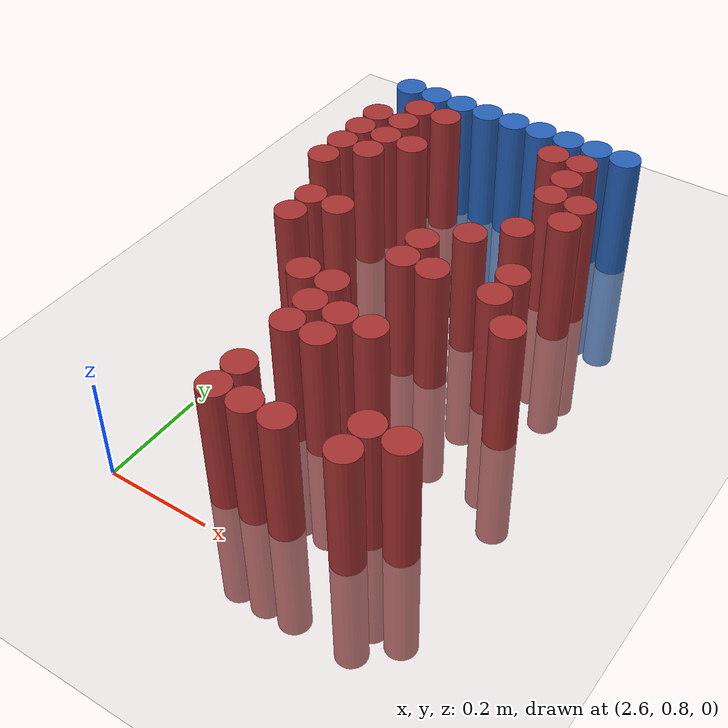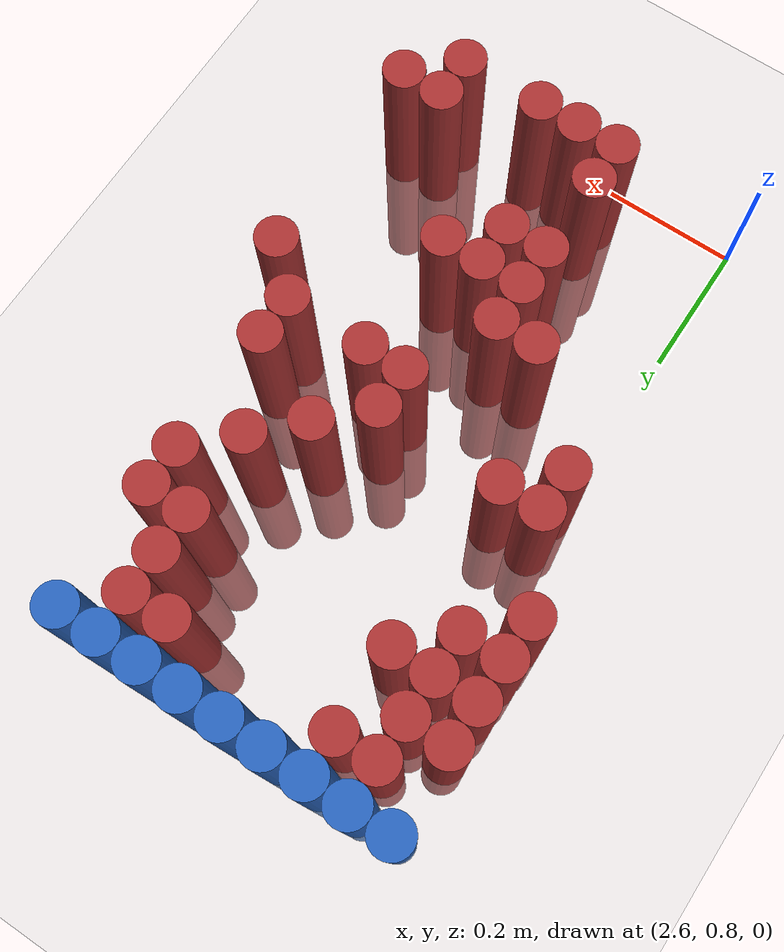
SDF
<sdf version="1.6">
 <world name="default">
  <model name="ground_plane">
   <static>1</static>
   <link name="link">
    <collision name="collision">
     <geometry><plane><normal>0 0 1</normal><size>100 100</size></plane></geometry>
     <surface><friction><ode><mu>100</mu><mu2>50</mu2></ode></friction></surface>
    </collision>
    <visual name="visual">
     <cast_shadows>0</cast_shadows>
     <geometry><plane><normal>0 0 1</normal><size>100 100</size></plane></geometry>
     <material>
      <script><uri>file://media/materials/scripts/gazebo.material</uri><name>Gazebo/Grey</name></script>
     </material>
    </visual>
   </link>
  </model>
  <model name="unit_cylinder_103">
   <static>1</static>
   <pose>2.550000 1.770000 0.000000 0.000000 0.000000 0.000000</pose>
   <link name="link">
    <inertial>
     <mass>1</mass>
     <inertia><ixx>0.145833</ixx><ixy>0</ixy><ixz>0</ixz><iyy>0.145833</iyy><iyz>0</iyz><izz>0.125</izz></inertia>
    </inertial>
    <collision name="collision">
     <geometry><cylinder><radius>0.030000</radius><length>0.5</length></cylinder></geometry>
    </collision>
    <visual name="visual">
     <geometry><cylinder><radius>0.030000</radius><length>0.5</length></cylinder></geometry>
     <material>
      <ambient>0.152000 0.379000 0.720000 1</ambient>
      <diffuse>0.152000 0.379000 0.720000 1</diffuse>
     </material>
     <material>
      <script><name>Gazebo/Grey</name><uri>file://media/materials/scripts/gazebo.material</uri></script>
     </material>
    </visual>
   </link>
  </model>
  <model name="unit_cylinder_104">
   <static>1</static>
   <pose>2.610000 1.770000 0.000000 0.000000 0.000000 0.000000</pose>
   <link name="link">
    <inertial>
     <mass>1</mass>
     <inertia><ixx>0.145833</ixx><ixy>0</ixy><ixz>0</ixz><iyy>0.145833</iyy><iyz>0</iyz><izz>0.125</izz></inertia>
    </inertial>
    <collision name="collision">
     <geometry><cylinder><radius>0.030000</radius><length>0.5</length></cylinder></geometry>
    </collision>
    <visual name="visual">
     <geometry><cylinder><radius>0.030000</radius><length>0.5</length></cylinder></geometry>
     <material>
      <ambient>0.152000 0.379000 0.720000 1</ambient>
      <diffuse>0.152000 0.379000 0.720000 1</diffuse>
     </material>
     <material>
      <script><name>Gazebo/Grey</name><uri>file://media/materials/scripts/gazebo.material</uri></script>
     </material>
    </visual>
   </link>
  </model>
  <model name="unit_cylinder_105">
   <static>1</static>
   <pose>2.670000 1.770000 0.000000 0.000000 0.000000 0.000000</pose>
   <link name="link">
    <inertial>
     <mass>1</mass>
     <inertia><ixx>0.145833</ixx><ixy>0</ixy><ixz>0</ixz><iyy>0.145833</iyy><iyz>0</iyz><izz>0.125</izz></inertia>
    </inertial>
    <collision name="collision">
     <geometry><cylinder><radius>0.030000</radius><length>0.5</length></cylinder></geometry>
    </collision>
    <visual name="visual">
     <geometry><cylinder><radius>0.030000</radius><length>0.5</length></cylinder></geometry>
     <material>
      <ambient>0.152000 0.379000 0.720000 1</ambient>
      <diffuse>0.152000 0.379000 0.720000 1</diffuse>
     </material>
     <material>
      <script><name>Gazebo/Grey</name><uri>file://media/materials/scripts/gazebo.material</uri></script>
     </material>
    </visual>
   </link>
  </model>
  <model name="unit_cylinder_106">
   <static>1</static>
   <pose>2.730000 1.770000 0.000000 0.000000 0.000000 0.000000</pose>
   <link name="link">
    <inertial>
     <mass>1</mass>
     <inertia><ixx>0.145833</ixx><ixy>0</ixy><ixz>0</ixz><iyy>0.145833</iyy><iyz>0</iyz><izz>0.125</izz></inertia>
    </inertial>
    <collision name="collision">
     <geometry><cylinder><radius>0.030000</radius><length>0.5</length></cylinder></geometry>
    </collision>
    <visual name="visual">
     <geometry><cylinder><radius>0.030000</radius><length>0.5</length></cylinder></geometry>
     <material>
      <ambient>0.152000 0.379000 0.720000 1</ambient>
      <diffuse>0.152000 0.379000 0.720000 1</diffuse>
     </material>
     <material>
      <script><name>Gazebo/Grey</name><uri>file://media/materials/scripts/gazebo.material</uri></script>
     </material>
    </visual>
   </link>
  </model>
  <model name="unit_cylinder_107">
   <static>1</static>
   <pose>2.790000 1.770000 0.000000 0.000000 0.000000 0.000000</pose>
   <link name="link">
    <inertial>
     <mass>1</mass>
     <inertia><ixx>0.145833</ixx><ixy>0</ixy><ixz>0</ixz><iyy>0.145833</iyy><iyz>0</iyz><izz>0.125</izz></inertia>
    </inertial>
    <collision name="collision">
     <geometry><cylinder><radius>0.030000</radius><length>0.5</length></cylinder></geometry>
    </collision>
    <visual name="visual">
     <geometry><cylinder><radius>0.030000</radius><length>0.5</length></cylinder></geometry>
     <material>
      <ambient>0.152000 0.379000 0.720000 1</ambient>
      <diffuse>0.152000 0.379000 0.720000 1</diffuse>
     </material>
     <material>
      <script><name>Gazebo/Grey</name><uri>file://media/materials/scripts/gazebo.material</uri></script>
     </material>
    </visual>
   </link>
  </model>
  <model name="unit_cylinder_108">
   <static>1</static>
   <pose>2.850000 1.770000 0.000000 0.000000 0.000000 0.000000</pose>
   <link name="link">
    <inertial>
     <mass>1</mass>
     <inertia><ixx>0.145833</ixx><ixy>0</ixy><ixz>0</ixz><iyy>0.145833</iyy><iyz>0</iyz><izz>0.125</izz></inertia>
    </inertial>
    <collision name="collision">
     <geometry><cylinder><radius>0.030000</radius><length>0.5</length></cylinder></geometry>
    </collision>
    <visual name="visual">
     <geometry><cylinder><radius>0.030000</radius><length>0.5</length></cylinder></geometry>
     <material>
      <ambient>0.152000 0.379000 0.720000 1</ambient>
      <diffuse>0.152000 0.379000 0.720000 1</diffuse>
     </material>
     <material>
      <script><name>Gazebo/Grey</name><uri>file://media/materials/scripts/gazebo.material</uri></script>
     </material>
    </visual>
   </link>
  </model>
  <model name="unit_cylinder_109">
   <static>1</static>
   <pose>2.910000 1.770000 0.000000 0.000000 0.000000 0.000000</pose>
   <link name="link">
    <inertial>
     <mass>1</mass>
     <inertia><ixx>0.145833</ixx><ixy>0</ixy><ixz>0</ixz><iyy>0.145833</iyy><iyz>0</iyz><izz>0.125</izz></inertia>
    </inertial>
    <collision name="collision">
     <geometry><cylinder><radius>0.030000</radius><length>0.5</length></cylinder></geometry>
    </collision>
    <visual name="visual">
     <geometry><cylinder><radius>0.030000</radius><length>0.5</length></cylinder></geometry>
     <material>
      <ambient>0.152000 0.379000 0.720000 1</ambient>
      <diffuse>0.152000 0.379000 0.720000 1</diffuse>
     </material>
     <material>
      <script><name>Gazebo/Grey</name><uri>file://media/materials/scripts/gazebo.material</uri></script>
     </material>
    </visual>
   </link>
  </model>
  <model name="unit_cylinder_110">
   <static>1</static>
   <pose>2.970000 1.770000 0.000000 0.000000 0.000000 0.000000</pose>
   <link name="link">
    <inertial>
     <mass>1</mass>
     <inertia><ixx>0.145833</ixx><ixy>0</ixy><ixz>0</ixz><iyy>0.145833</iyy><iyz>0</iyz><izz>0.125</izz></inertia>
    </inertial>
    <collision name="collision">
     <geometry><cylinder><radius>0.030000</radius><length>0.5</length></cylinder></geometry>
    </collision>
    <visual name="visual">
     <geometry><cylinder><radius>0.030000</radius><length>0.5</length></cylinder></geometry>
     <material>
      <ambient>0.152000 0.379000 0.720000 1</ambient>
      <diffuse>0.152000 0.379000 0.720000 1</diffuse>
     </material>
     <material>
      <script><name>Gazebo/Grey</name><uri>file://media/materials/scripts/gazebo.material</uri></script>
     </material>
    </visual>
   </link>
  </model>
  <model name="unit_cylinder_111">
   <static>1</static>
   <pose>3.030000 1.770000 0.000000 0.000000 0.000000 0.000000</pose>
   <link name="link">
    <inertial>
     <mass>1</mass>
     <inertia><ixx>0.145833</ixx><ixy>0</ixy><ixz>0</ixz><iyy>0.145833</iyy><iyz>0</iyz><izz>0.125</izz></inertia>
    </inertial>
    <collision name="collision">
     <geometry><cylinder><radius>0.030000</radius><length>0.5</length></cylinder></geometry>
    </collision>
    <visual name="visual">
     <geometry><cylinder><radius>0.030000</radius><length>0.5</length></cylinder></geometry>
     <material>
      <ambient>0.152000 0.379000 0.720000 1</ambient>
      <diffuse>0.152000 0.379000 0.720000 1</diffuse>
     </material>
     <material>
      <script><name>Gazebo/Grey</name><uri>file://media/materials/scripts/gazebo.material</uri></script>
     </material>
    </visual>
   </link>
  </model>
  <model name="unit_cylinder_131">
   <static>1</static>
   <pose>2.610000 1.710000 0.000000 0.000000 0.000000 0.000000</pose>
   <link name="link">
    <inertial>
     <mass>1</mass>
     <inertia><ixx>0.145833</ixx><ixy>0</ixy><ixz>0</ixz><iyy>0.145833</iyy><iyz>0</iyz><izz>0.125</izz></inertia>
    </inertial>
    <collision name="collision">
     <geometry><cylinder><radius>0.030000</radius><length>0.5</length></cylinder></geometry>
    </collision>
    <visual name="visual">
     <geometry><cylinder><radius>0.030000</radius><length>0.5</length></cylinder></geometry>
     <material>
      <ambient>0.648000 0.192000 0.192000 1</ambient>
      <diffuse>0.648000 0.192000 0.192000 1</diffuse>
     </material>
     <material>
      <script><name>Gazebo/Grey</name><uri>file://media/materials/scripts/gazebo.material</uri></script>
     </material>
    </visual>
   </link>
  </model>
  <model name="unit_cylinder_132">
   <static>1</static>
   <pose>2.670000 1.710000 0.000000 0.000000 0.000000 0.000000</pose>
   <link name="link">
    <inertial>
     <mass>1</mass>
     <inertia><ixx>0.145833</ixx><ixy>0</ixy><ixz>0</ixz><iyy>0.145833</iyy><iyz>0</iyz><izz>0.125</izz></inertia>
    </inertial>
    <collision name="collision">
     <geometry><cylinder><radius>0.030000</radius><length>0.5</length></cylinder></geometry>
    </collision>
    <visual name="visual">
     <geometry><cylinder><radius>0.030000</radius><length>0.5</length></cylinder></geometry>
     <material>
      <ambient>0.648000 0.192000 0.192000 1</ambient>
      <diffuse>0.648000 0.192000 0.192000 1</diffuse>
     </material>
     <material>
      <script><name>Gazebo/Grey</name><uri>file://media/materials/scripts/gazebo.material</uri></script>
     </material>
    </visual>
   </link>
  </model>
  <model name="unit_cylinder_133">
   <static>1</static>
   <pose>2.910000 1.710000 0.000000 0.000000 0.000000 0.000000</pose>
   <link name="link">
    <inertial>
     <mass>1</mass>
     <inertia><ixx>0.145833</ixx><ixy>0</ixy><ixz>0</ixz><iyy>0.145833</iyy><iyz>0</iyz><izz>0.125</izz></inertia>
    </inertial>
    <collision name="collision">
     <geometry><cylinder><radius>0.030000</radius><length>0.5</length></cylinder></geometry>
    </collision>
    <visual name="visual">
     <geometry><cylinder><radius>0.030000</radius><length>0.5</length></cylinder></geometry>
     <material>
      <ambient>0.648000 0.192000 0.192000 1</ambient>
      <diffuse>0.648000 0.192000 0.192000 1</diffuse>
     </material>
     <material>
      <script><name>Gazebo/Grey</name><uri>file://media/materials/scripts/gazebo.material</uri></script>
     </material>
    </visual>
   </link>
  </model>
  <model name="unit_cylinder_134">
   <static>1</static>
   <pose>2.970000 1.710000 0.000000 0.000000 0.000000 0.000000</pose>
   <link name="link">
    <inertial>
     <mass>1</mass>
     <inertia><ixx>0.145833</ixx><ixy>0</ixy><ixz>0</ixz><iyy>0.145833</iyy><iyz>0</iyz><izz>0.125</izz></inertia>
    </inertial>
    <collision name="collision">
     <geometry><cylinder><radius>0.030000</radius><length>0.5</length></cylinder></geometry>
    </collision>
    <visual name="visual">
     <geometry><cylinder><radius>0.030000</radius><length>0.5</length></cylinder></geometry>
     <material>
      <ambient>0.648000 0.192000 0.192000 1</ambient>
      <diffuse>0.648000 0.192000 0.192000 1</diffuse>
     </material>
     <material>
      <script><name>Gazebo/Grey</name><uri>file://media/materials/scripts/gazebo.material</uri></script>
     </material>
    </visual>
   </link>
  </model>
  <model name="unit_cylinder_150">
   <static>1</static>
   <pose>2.550000 1.650000 0.000000 0.000000 0.000000 0.000000</pose>
   <link name="link">
    <inertial>
     <mass>1</mass>
     <inertia><ixx>0.145833</ixx><ixy>0</ixy><ixz>0</ixz><iyy>0.145833</iyy><iyz>0</iyz><izz>0.125</izz></inertia>
    </inertial>
    <collision name="collision">
     <geometry><cylinder><radius>0.030000</radius><length>0.5</length></cylinder></geometry>
    </collision>
    <visual name="visual">
     <geometry><cylinder><radius>0.030000</radius><length>0.5</length></cylinder></geometry>
     <material>
      <ambient>0.648000 0.192000 0.192000 1</ambient>
      <diffuse>0.648000 0.192000 0.192000 1</diffuse>
     </material>
     <material>
      <script><name>Gazebo/Grey</name><uri>file://media/materials/scripts/gazebo.material</uri></script>
     </material>
    </visual>
   </link>
  </model>
  <model name="unit_cylinder_151">
   <static>1</static>
   <pose>2.610000 1.650000 0.000000 0.000000 0.000000 0.000000</pose>
   <link name="link">
    <inertial>
     <mass>1</mass>
     <inertia><ixx>0.145833</ixx><ixy>0</ixy><ixz>0</ixz><iyy>0.145833</iyy><iyz>0</iyz><izz>0.125</izz></inertia>
    </inertial>
    <collision name="collision">
     <geometry><cylinder><radius>0.030000</radius><length>0.5</length></cylinder></geometry>
    </collision>
    <visual name="visual">
     <geometry><cylinder><radius>0.030000</radius><length>0.5</length></cylinder></geometry>
     <material>
      <ambient>0.648000 0.192000 0.192000 1</ambient>
      <diffuse>0.648000 0.192000 0.192000 1</diffuse>
     </material>
     <material>
      <script><name>Gazebo/Grey</name><uri>file://media/materials/scripts/gazebo.material</uri></script>
     </material>
    </visual>
   </link>
  </model>
  <model name="unit_cylinder_152">
   <static>1</static>
   <pose>2.970000 1.650000 0.000000 0.000000 0.000000 0.000000</pose>
   <link name="link">
    <inertial>
     <mass>1</mass>
     <inertia><ixx>0.145833</ixx><ixy>0</ixy><ixz>0</ixz><iyy>0.145833</iyy><iyz>0</iyz><izz>0.125</izz></inertia>
    </inertial>
    <collision name="collision">
     <geometry><cylinder><radius>0.030000</radius><length>0.5</length></cylinder></geometry>
    </collision>
    <visual name="visual">
     <geometry><cylinder><radius>0.030000</radius><length>0.5</length></cylinder></geometry>
     <material>
      <ambient>0.648000 0.192000 0.192000 1</ambient>
      <diffuse>0.648000 0.192000 0.192000 1</diffuse>
     </material>
     <material>
      <script><name>Gazebo/Grey</name><uri>file://media/materials/scripts/gazebo.material</uri></script>
     </material>
    </visual>
   </link>
  </model>
  <model name="unit_cylinder_159">
   <static>1</static>
   <pose>2.550000 1.590000 0.000000 0.000000 0.000000 0.000000</pose>
   <link name="link">
    <inertial>
     <mass>1</mass>
     <inertia><ixx>0.145833</ixx><ixy>0</ixy><ixz>0</ixz><iyy>0.145833</iyy><iyz>0</iyz><izz>0.125</izz></inertia>
    </inertial>
    <collision name="collision">
     <geometry><cylinder><radius>0.030000</radius><length>0.5</length></cylinder></geometry>
    </collision>
    <visual name="visual">
     <geometry><cylinder><radius>0.030000</radius><length>0.5</length></cylinder></geometry>
     <material>
      <ambient>0.648000 0.192000 0.192000 1</ambient>
      <diffuse>0.648000 0.192000 0.192000 1</diffuse>
     </material>
     <material>
      <script><name>Gazebo/Grey</name><uri>file://media/materials/scripts/gazebo.material</uri></script>
     </material>
    </visual>
   </link>
  </model>
  <model name="unit_cylinder_160">
   <static>1</static>
   <pose>2.610000 1.590000 0.000000 0.000000 0.000000 0.000000</pose>
   <link name="link">
    <inertial>
     <mass>1</mass>
     <inertia><ixx>0.145833</ixx><ixy>0</ixy><ixz>0</ixz><iyy>0.145833</iyy><iyz>0</iyz><izz>0.125</izz></inertia>
    </inertial>
    <collision name="collision">
     <geometry><cylinder><radius>0.030000</radius><length>0.5</length></cylinder></geometry>
    </collision>
    <visual name="visual">
     <geometry><cylinder><radius>0.030000</radius><length>0.5</length></cylinder></geometry>
     <material>
      <ambient>0.648000 0.192000 0.192000 1</ambient>
      <diffuse>0.648000 0.192000 0.192000 1</diffuse>
     </material>
     <material>
      <script><name>Gazebo/Grey</name><uri>file://media/materials/scripts/gazebo.material</uri></script>
     </material>
    </visual>
   </link>
  </model>
  <model name="unit_cylinder_161">
   <static>1</static>
   <pose>2.670000 1.590000 0.000000 0.000000 0.000000 0.000000</pose>
   <link name="link">
    <inertial>
     <mass>1</mass>
     <inertia><ixx>0.145833</ixx><ixy>0</ixy><ixz>0</ixz><iyy>0.145833</iyy><iyz>0</iyz><izz>0.125</izz></inertia>
    </inertial>
    <collision name="collision">
     <geometry><cylinder><radius>0.030000</radius><length>0.5</length></cylinder></geometry>
    </collision>
    <visual name="visual">
     <geometry><cylinder><radius>0.030000</radius><length>0.5</length></cylinder></geometry>
     <material>
      <ambient>0.648000 0.192000 0.192000 1</ambient>
      <diffuse>0.648000 0.192000 0.192000 1</diffuse>
     </material>
     <material>
      <script><name>Gazebo/Grey</name><uri>file://media/materials/scripts/gazebo.material</uri></script>
     </material>
    </visual>
   </link>
  </model>
  <model name="unit_cylinder_162">
   <static>1</static>
   <pose>2.970000 1.590000 0.000000 0.000000 0.000000 0.000000</pose>
   <link name="link">
    <inertial>
     <mass>1</mass>
     <inertia><ixx>0.145833</ixx><ixy>0</ixy><ixz>0</ixz><iyy>0.145833</iyy><iyz>0</iyz><izz>0.125</izz></inertia>
    </inertial>
    <collision name="collision">
     <geometry><cylinder><radius>0.030000</radius><length>0.5</length></cylinder></geometry>
    </collision>
    <visual name="visual">
     <geometry><cylinder><radius>0.030000</radius><length>0.5</length></cylinder></geometry>
     <material>
      <ambient>0.648000 0.192000 0.192000 1</ambient>
      <diffuse>0.648000 0.192000 0.192000 1</diffuse>
     </material>
     <material>
      <script><name>Gazebo/Grey</name><uri>file://media/materials/scripts/gazebo.material</uri></script>
     </material>
    </visual>
   </link>
  </model>
  <model name="unit_cylinder_163">
   <static>1</static>
   <pose>3.030000 1.590000 0.000000 0.000000 0.000000 0.000000</pose>
   <link name="link">
    <inertial>
     <mass>1</mass>
     <inertia><ixx>0.145833</ixx><ixy>0</ixy><ixz>0</ixz><iyy>0.145833</iyy><iyz>0</iyz><izz>0.125</izz></inertia>
    </inertial>
    <collision name="collision">
     <geometry><cylinder><radius>0.030000</radius><length>0.5</length></cylinder></geometry>
    </collision>
    <visual name="visual">
     <geometry><cylinder><radius>0.030000</radius><length>0.5</length></cylinder></geometry>
     <material>
      <ambient>0.648000 0.192000 0.192000 1</ambient>
      <diffuse>0.648000 0.192000 0.192000 1</diffuse>
     </material>
     <material>
      <script><name>Gazebo/Grey</name><uri>file://media/materials/scripts/gazebo.material</uri></script>
     </material>
    </visual>
   </link>
  </model>
  <model name="unit_cylinder_167">
   <static>1</static>
   <pose>2.550000 1.530000 0.000000 0.000000 0.000000 0.000000</pose>
   <link name="link">
    <inertial>
     <mass>1</mass>
     <inertia><ixx>0.145833</ixx><ixy>0</ixy><ixz>0</ixz><iyy>0.145833</iyy><iyz>0</iyz><izz>0.125</izz></inertia>
    </inertial>
    <collision name="collision">
     <geometry><cylinder><radius>0.030000</radius><length>0.5</length></cylinder></geometry>
    </collision>
    <visual name="visual">
     <geometry><cylinder><radius>0.030000</radius><length>0.5</length></cylinder></geometry>
     <material>
      <ambient>0.648000 0.192000 0.192000 1</ambient>
      <diffuse>0.648000 0.192000 0.192000 1</diffuse>
     </material>
     <material>
      <script><name>Gazebo/Grey</name><uri>file://media/materials/scripts/gazebo.material</uri></script>
     </material>
    </visual>
   </link>
  </model>
  <model name="unit_cylinder_168">
   <static>1</static>
   <pose>2.610000 1.530000 0.000000 0.000000 0.000000 0.000000</pose>
   <link name="link">
    <inertial>
     <mass>1</mass>
     <inertia><ixx>0.145833</ixx><ixy>0</ixy><ixz>0</ixz><iyy>0.145833</iyy><iyz>0</iyz><izz>0.125</izz></inertia>
    </inertial>
    <collision name="collision">
     <geometry><cylinder><radius>0.030000</radius><length>0.5</length></cylinder></geometry>
    </collision>
    <visual name="visual">
     <geometry><cylinder><radius>0.030000</radius><length>0.5</length></cylinder></geometry>
     <material>
      <ambient>0.648000 0.192000 0.192000 1</ambient>
      <diffuse>0.648000 0.192000 0.192000 1</diffuse>
     </material>
     <material>
      <script><name>Gazebo/Grey</name><uri>file://media/materials/scripts/gazebo.material</uri></script>
     </material>
    </visual>
   </link>
  </model>
  <model name="unit_cylinder_169">
   <static>1</static>
   <pose>3.030000 1.530000 0.000000 0.000000 0.000000 0.000000</pose>
   <link name="link">
    <inertial>
     <mass>1</mass>
     <inertia><ixx>0.145833</ixx><ixy>0</ixy><ixz>0</ixz><iyy>0.145833</iyy><iyz>0</iyz><izz>0.125</izz></inertia>
    </inertial>
    <collision name="collision">
     <geometry><cylinder><radius>0.030000</radius><length>0.5</length></cylinder></geometry>
    </collision>
    <visual name="visual">
     <geometry><cylinder><radius>0.030000</radius><length>0.5</length></cylinder></geometry>
     <material>
      <ambient>0.648000 0.192000 0.192000 1</ambient>
      <diffuse>0.648000 0.192000 0.192000 1</diffuse>
     </material>
     <material>
      <script><name>Gazebo/Grey</name><uri>file://media/materials/scripts/gazebo.material</uri></script>
     </material>
    </visual>
   </link>
  </model>
  <model name="unit_cylinder_172">
   <static>1</static>
   <pose>2.550000 1.470000 0.000000 0.000000 0.000000 0.000000</pose>
   <link name="link">
    <inertial>
     <mass>1</mass>
     <inertia><ixx>0.145833</ixx><ixy>0</ixy><ixz>0</ixz><iyy>0.145833</iyy><iyz>0</iyz><izz>0.125</izz></inertia>
    </inertial>
    <collision name="collision">
     <geometry><cylinder><radius>0.030000</radius><length>0.5</length></cylinder></geometry>
    </collision>
    <visual name="visual">
     <geometry><cylinder><radius>0.030000</radius><length>0.5</length></cylinder></geometry>
     <material>
      <ambient>0.648000 0.192000 0.192000 1</ambient>
      <diffuse>0.648000 0.192000 0.192000 1</diffuse>
     </material>
     <material>
      <script><name>Gazebo/Grey</name><uri>file://media/materials/scripts/gazebo.material</uri></script>
     </material>
    </visual>
   </link>
  </model>
  <model name="unit_cylinder_173">
   <static>1</static>
   <pose>2.970000 1.470000 0.000000 0.000000 0.000000 0.000000</pose>
   <link name="link">
    <inertial>
     <mass>1</mass>
     <inertia><ixx>0.145833</ixx><ixy>0</ixy><ixz>0</ixz><iyy>0.145833</iyy><iyz>0</iyz><izz>0.125</izz></inertia>
    </inertial>
    <collision name="collision">
     <geometry><cylinder><radius>0.030000</radius><length>0.5</length></cylinder></geometry>
    </collision>
    <visual name="visual">
     <geometry><cylinder><radius>0.030000</radius><length>0.5</length></cylinder></geometry>
     <material>
      <ambient>0.648000 0.192000 0.192000 1</ambient>
      <diffuse>0.648000 0.192000 0.192000 1</diffuse>
     </material>
     <material>
      <script><name>Gazebo/Grey</name><uri>file://media/materials/scripts/gazebo.material</uri></script>
     </material>
    </visual>
   </link>
  </model>
  <model name="unit_cylinder_177">
   <static>1</static>
   <pose>2.910000 1.410000 0.000000 0.000000 0.000000 0.000000</pose>
   <link name="link">
    <inertial>
     <mass>1</mass>
     <inertia><ixx>0.145833</ixx><ixy>0</ixy><ixz>0</ixz><iyy>0.145833</iyy><iyz>0</iyz><izz>0.125</izz></inertia>
    </inertial>
    <collision name="collision">
     <geometry><cylinder><radius>0.030000</radius><length>0.5</length></cylinder></geometry>
    </collision>
    <visual name="visual">
     <geometry><cylinder><radius>0.030000</radius><length>0.5</length></cylinder></geometry>
     <material>
      <ambient>0.648000 0.192000 0.192000 1</ambient>
      <diffuse>0.648000 0.192000 0.192000 1</diffuse>
     </material>
     <material>
      <script><name>Gazebo/Grey</name><uri>file://media/materials/scripts/gazebo.material</uri></script>
     </material>
    </visual>
   </link>
  </model>
  <model name="unit_cylinder_183">
   <static>1</static>
   <pose>2.610000 1.350000 0.000000 0.000000 0.000000 0.000000</pose>
   <link name="link">
    <inertial>
     <mass>1</mass>
     <inertia><ixx>0.145833</ixx><ixy>0</ixy><ixz>0</ixz><iyy>0.145833</iyy><iyz>0</iyz><izz>0.125</izz></inertia>
    </inertial>
    <collision name="collision">
     <geometry><cylinder><radius>0.030000</radius><length>0.5</length></cylinder></geometry>
    </collision>
    <visual name="visual">
     <geometry><cylinder><radius>0.030000</radius><length>0.5</length></cylinder></geometry>
     <material>
      <ambient>0.648000 0.192000 0.192000 1</ambient>
      <diffuse>0.648000 0.192000 0.192000 1</diffuse>
     </material>
     <material>
      <script><name>Gazebo/Grey</name><uri>file://media/materials/scripts/gazebo.material</uri></script>
     </material>
    </visual>
   </link>
  </model>
  <model name="unit_cylinder_184">
   <static>1</static>
   <pose>2.670000 1.350000 0.000000 0.000000 0.000000 0.000000</pose>
   <link name="link">
    <inertial>
     <mass>1</mass>
     <inertia><ixx>0.145833</ixx><ixy>0</ixy><ixz>0</ixz><iyy>0.145833</iyy><iyz>0</iyz><izz>0.125</izz></inertia>
    </inertial>
    <collision name="collision">
     <geometry><cylinder><radius>0.030000</radius><length>0.5</length></cylinder></geometry>
    </collision>
    <visual name="visual">
     <geometry><cylinder><radius>0.030000</radius><length>0.5</length></cylinder></geometry>
     <material>
      <ambient>0.648000 0.192000 0.192000 1</ambient>
      <diffuse>0.648000 0.192000 0.192000 1</diffuse>
     </material>
     <material>
      <script><name>Gazebo/Grey</name><uri>file://media/materials/scripts/gazebo.material</uri></script>
     </material>
    </visual>
   </link>
  </model>
  <model name="unit_cylinder_185">
   <static>1</static>
   <pose>2.850000 1.350000 0.000000 0.000000 0.000000 0.000000</pose>
   <link name="link">
    <inertial>
     <mass>1</mass>
     <inertia><ixx>0.145833</ixx><ixy>0</ixy><ixz>0</ixz><iyy>0.145833</iyy><iyz>0</iyz><izz>0.125</izz></inertia>
    </inertial>
    <collision name="collision">
     <geometry><cylinder><radius>0.030000</radius><length>0.5</length></cylinder></geometry>
    </collision>
    <visual name="visual">
     <geometry><cylinder><radius>0.030000</radius><length>0.5</length></cylinder></geometry>
     <material>
      <ambient>0.648000 0.192000 0.192000 1</ambient>
      <diffuse>0.648000 0.192000 0.192000 1</diffuse>
     </material>
     <material>
      <script><name>Gazebo/Grey</name><uri>file://media/materials/scripts/gazebo.material</uri></script>
     </material>
    </visual>
   </link>
  </model>
  <model name="unit_cylinder_186">
   <static>1</static>
   <pose>3.030000 1.350000 0.000000 0.000000 0.000000 0.000000</pose>
   <link name="link">
    <inertial>
     <mass>1</mass>
     <inertia><ixx>0.145833</ixx><ixy>0</ixy><ixz>0</ixz><iyy>0.145833</iyy><iyz>0</iyz><izz>0.125</izz></inertia>
    </inertial>
    <collision name="collision">
     <geometry><cylinder><radius>0.030000</radius><length>0.5</length></cylinder></geometry>
    </collision>
    <visual name="visual">
     <geometry><cylinder><radius>0.030000</radius><length>0.5</length></cylinder></geometry>
     <material>
      <ambient>0.648000 0.192000 0.192000 1</ambient>
      <diffuse>0.648000 0.192000 0.192000 1</diffuse>
     </material>
     <material>
      <script><name>Gazebo/Grey</name><uri>file://media/materials/scripts/gazebo.material</uri></script>
     </material>
    </visual>
   </link>
  </model>
  <model name="unit_cylinder_191">
   <static>1</static>
   <pose>2.610000 1.290000 0.000000 0.000000 0.000000 0.000000</pose>
   <link name="link">
    <inertial>
     <mass>1</mass>
     <inertia><ixx>0.145833</ixx><ixy>0</ixy><ixz>0</ixz><iyy>0.145833</iyy><iyz>0</iyz><izz>0.125</izz></inertia>
    </inertial>
    <collision name="collision">
     <geometry><cylinder><radius>0.030000</radius><length>0.5</length></cylinder></geometry>
    </collision>
    <visual name="visual">
     <geometry><cylinder><radius>0.030000</radius><length>0.5</length></cylinder></geometry>
     <material>
      <ambient>0.648000 0.192000 0.192000 1</ambient>
      <diffuse>0.648000 0.192000 0.192000 1</diffuse>
     </material>
     <material>
      <script><name>Gazebo/Grey</name><uri>file://media/materials/scripts/gazebo.material</uri></script>
     </material>
    </visual>
   </link>
  </model>
  <model name="unit_cylinder_192">
   <static>1</static>
   <pose>2.850000 1.290000 0.000000 0.000000 0.000000 0.000000</pose>
   <link name="link">
    <inertial>
     <mass>1</mass>
     <inertia><ixx>0.145833</ixx><ixy>0</ixy><ixz>0</ixz><iyy>0.145833</iyy><iyz>0</iyz><izz>0.125</izz></inertia>
    </inertial>
    <collision name="collision">
     <geometry><cylinder><radius>0.030000</radius><length>0.5</length></cylinder></geometry>
    </collision>
    <visual name="visual">
     <geometry><cylinder><radius>0.030000</radius><length>0.5</length></cylinder></geometry>
     <material>
      <ambient>0.648000 0.192000 0.192000 1</ambient>
      <diffuse>0.648000 0.192000 0.192000 1</diffuse>
     </material>
     <material>
      <script><name>Gazebo/Grey</name><uri>file://media/materials/scripts/gazebo.material</uri></script>
     </material>
    </visual>
   </link>
  </model>
  <model name="unit_cylinder_193">
   <static>1</static>
   <pose>2.910000 1.290000 0.000000 0.000000 0.000000 0.000000</pose>
   <link name="link">
    <inertial>
     <mass>1</mass>
     <inertia><ixx>0.145833</ixx><ixy>0</ixy><ixz>0</ixz><iyy>0.145833</iyy><iyz>0</iyz><izz>0.125</izz></inertia>
    </inertial>
    <collision name="collision">
     <geometry><cylinder><radius>0.030000</radius><length>0.5</length></cylinder></geometry>
    </collision>
    <visual name="visual">
     <geometry><cylinder><radius>0.030000</radius><length>0.5</length></cylinder></geometry>
     <material>
      <ambient>0.648000 0.192000 0.192000 1</ambient>
      <diffuse>0.648000 0.192000 0.192000 1</diffuse>
     </material>
     <material>
      <script><name>Gazebo/Grey</name><uri>file://media/materials/scripts/gazebo.material</uri></script>
     </material>
    </visual>
   </link>
  </model>
  <model name="unit_cylinder_194">
   <static>1</static>
   <pose>3.030000 1.290000 0.000000 0.000000 0.000000 0.000000</pose>
   <link name="link">
    <inertial>
     <mass>1</mass>
     <inertia><ixx>0.145833</ixx><ixy>0</ixy><ixz>0</ixz><iyy>0.145833</iyy><iyz>0</iyz><izz>0.125</izz></inertia>
    </inertial>
    <collision name="collision">
     <geometry><cylinder><radius>0.030000</radius><length>0.5</length></cylinder></geometry>
    </collision>
    <visual name="visual">
     <geometry><cylinder><radius>0.030000</radius><length>0.5</length></cylinder></geometry>
     <material>
      <ambient>0.648000 0.192000 0.192000 1</ambient>
      <diffuse>0.648000 0.192000 0.192000 1</diffuse>
     </material>
     <material>
      <script><name>Gazebo/Grey</name><uri>file://media/materials/scripts/gazebo.material</uri></script>
     </material>
    </visual>
   </link>
  </model>
  <model name="unit_cylinder_200">
   <static>1</static>
   <pose>3.090000 1.230000 0.000000 0.000000 0.000000 0.000000</pose>
   <link name="link">
    <inertial>
     <mass>1</mass>
     <inertia><ixx>0.145833</ixx><ixy>0</ixy><ixz>0</ixz><iyy>0.145833</iyy><iyz>0</iyz><izz>0.125</izz></inertia>
    </inertial>
    <collision name="collision">
     <geometry><cylinder><radius>0.030000</radius><length>0.5</length></cylinder></geometry>
    </collision>
    <visual name="visual">
     <geometry><cylinder><radius>0.030000</radius><length>0.5</length></cylinder></geometry>
     <material>
      <ambient>0.648000 0.192000 0.192000 1</ambient>
      <diffuse>0.648000 0.192000 0.192000 1</diffuse>
     </material>
     <material>
      <script><name>Gazebo/Grey</name><uri>file://media/materials/scripts/gazebo.material</uri></script>
     </material>
    </visual>
   </link>
  </model>
  <model name="unit_cylinder_203">
   <static>1</static>
   <pose>2.730000 1.170000 0.000000 0.000000 0.000000 0.000000</pose>
   <link name="link">
    <inertial>
     <mass>1</mass>
     <inertia><ixx>0.145833</ixx><ixy>0</ixy><ixz>0</ixz><iyy>0.145833</iyy><iyz>0</iyz><izz>0.125</izz></inertia>
    </inertial>
    <collision name="collision">
     <geometry><cylinder><radius>0.030000</radius><length>0.5</length></cylinder></geometry>
    </collision>
    <visual name="visual">
     <geometry><cylinder><radius>0.030000</radius><length>0.5</length></cylinder></geometry>
     <material>
      <ambient>0.648000 0.192000 0.192000 1</ambient>
      <diffuse>0.648000 0.192000 0.192000 1</diffuse>
     </material>
     <material>
      <script><name>Gazebo/Grey</name><uri>file://media/materials/scripts/gazebo.material</uri></script>
     </material>
    </visual>
   </link>
  </model>
  <model name="unit_cylinder_204">
   <static>1</static>
   <pose>2.790000 1.170000 0.000000 0.000000 0.000000 0.000000</pose>
   <link name="link">
    <inertial>
     <mass>1</mass>
     <inertia><ixx>0.145833</ixx><ixy>0</ixy><ixz>0</ixz><iyy>0.145833</iyy><iyz>0</iyz><izz>0.125</izz></inertia>
    </inertial>
    <collision name="collision">
     <geometry><cylinder><radius>0.030000</radius><length>0.5</length></cylinder></geometry>
    </collision>
    <visual name="visual">
     <geometry><cylinder><radius>0.030000</radius><length>0.5</length></cylinder></geometry>
     <material>
      <ambient>0.648000 0.192000 0.192000 1</ambient>
      <diffuse>0.648000 0.192000 0.192000 1</diffuse>
     </material>
     <material>
      <script><name>Gazebo/Grey</name><uri>file://media/materials/scripts/gazebo.material</uri></script>
     </material>
    </visual>
   </link>
  </model>
  <model name="unit_cylinder_205">
   <static>1</static>
   <pose>2.790000 1.110000 0.000000 0.000000 0.000000 0.000000</pose>
   <link name="link">
    <inertial>
     <mass>1</mass>
     <inertia><ixx>0.145833</ixx><ixy>0</ixy><ixz>0</ixz><iyy>0.145833</iyy><iyz>0</iyz><izz>0.125</izz></inertia>
    </inertial>
    <collision name="collision">
     <geometry><cylinder><radius>0.030000</radius><length>0.5</length></cylinder></geometry>
    </collision>
    <visual name="visual">
     <geometry><cylinder><radius>0.030000</radius><length>0.5</length></cylinder></geometry>
     <material>
      <ambient>0.648000 0.192000 0.192000 1</ambient>
      <diffuse>0.648000 0.192000 0.192000 1</diffuse>
     </material>
     <material>
      <script><name>Gazebo/Grey</name><uri>file://media/materials/scripts/gazebo.material</uri></script>
     </material>
    </visual>
   </link>
  </model>
  <model name="unit_cylinder_206">
   <static>1</static>
   <pose>2.850000 1.110000 0.000000 0.000000 0.000000 0.000000</pose>
   <link name="link">
    <inertial>
     <mass>1</mass>
     <inertia><ixx>0.145833</ixx><ixy>0</ixy><ixz>0</ixz><iyy>0.145833</iyy><iyz>0</iyz><izz>0.125</izz></inertia>
    </inertial>
    <collision name="collision">
     <geometry><cylinder><radius>0.030000</radius><length>0.5</length></cylinder></geometry>
    </collision>
    <visual name="visual">
     <geometry><cylinder><radius>0.030000</radius><length>0.5</length></cylinder></geometry>
     <material>
      <ambient>0.648000 0.192000 0.192000 1</ambient>
      <diffuse>0.648000 0.192000 0.192000 1</diffuse>
     </material>
     <material>
      <script><name>Gazebo/Grey</name><uri>file://media/materials/scripts/gazebo.material</uri></script>
     </material>
    </visual>
   </link>
  </model>
  <model name="unit_cylinder_207">
   <static>1</static>
   <pose>2.910000 1.110000 0.000000 0.000000 0.000000 0.000000</pose>
   <link name="link">
    <inertial>
     <mass>1</mass>
     <inertia><ixx>0.145833</ixx><ixy>0</ixy><ixz>0</ixz><iyy>0.145833</iyy><iyz>0</iyz><izz>0.125</izz></inertia>
    </inertial>
    <collision name="collision">
     <geometry><cylinder><radius>0.030000</radius><length>0.5</length></cylinder></geometry>
    </collision>
    <visual name="visual">
     <geometry><cylinder><radius>0.030000</radius><length>0.5</length></cylinder></geometry>
     <material>
      <ambient>0.648000 0.192000 0.192000 1</ambient>
      <diffuse>0.648000 0.192000 0.192000 1</diffuse>
     </material>
     <material>
      <script><name>Gazebo/Grey</name><uri>file://media/materials/scripts/gazebo.material</uri></script>
     </material>
    </visual>
   </link>
  </model>
  <model name="unit_cylinder_208">
   <static>1</static>
   <pose>2.790000 1.050000 0.000000 0.000000 0.000000 0.000000</pose>
   <link name="link">
    <inertial>
     <mass>1</mass>
     <inertia><ixx>0.145833</ixx><ixy>0</ixy><ixz>0</ixz><iyy>0.145833</iyy><iyz>0</iyz><izz>0.125</izz></inertia>
    </inertial>
    <collision name="collision">
     <geometry><cylinder><radius>0.030000</radius><length>0.5</length></cylinder></geometry>
    </collision>
    <visual name="visual">
     <geometry><cylinder><radius>0.030000</radius><length>0.5</length></cylinder></geometry>
     <material>
      <ambient>0.648000 0.192000 0.192000 1</ambient>
      <diffuse>0.648000 0.192000 0.192000 1</diffuse>
     </material>
     <material>
      <script><name>Gazebo/Grey</name><uri>file://media/materials/scripts/gazebo.material</uri></script>
     </material>
    </visual>
   </link>
  </model>
  <model name="unit_cylinder_209">
   <static>1</static>
   <pose>2.850000 1.050000 0.000000 0.000000 0.000000 0.000000</pose>
   <link name="link">
    <inertial>
     <mass>1</mass>
     <inertia><ixx>0.145833</ixx><ixy>0</ixy><ixz>0</ixz><iyy>0.145833</iyy><iyz>0</iyz><izz>0.125</izz></inertia>
    </inertial>
    <collision name="collision">
     <geometry><cylinder><radius>0.030000</radius><length>0.5</length></cylinder></geometry>
    </collision>
    <visual name="visual">
     <geometry><cylinder><radius>0.030000</radius><length>0.5</length></cylinder></geometry>
     <material>
      <ambient>0.648000 0.192000 0.192000 1</ambient>
      <diffuse>0.648000 0.192000 0.192000 1</diffuse>
     </material>
     <material>
      <script><name>Gazebo/Grey</name><uri>file://media/materials/scripts/gazebo.material</uri></script>
     </material>
    </visual>
   </link>
  </model>
  <model name="unit_cylinder_210">
   <static>1</static>
   <pose>2.790000 0.930000 0.000000 0.000000 0.000000 0.000000</pose>
   <link name="link">
    <inertial>
     <mass>1</mass>
     <inertia><ixx>0.145833</ixx><ixy>0</ixy><ixz>0</ixz><iyy>0.145833</iyy><iyz>0</iyz><izz>0.125</izz></inertia>
    </inertial>
    <collision name="collision">
     <geometry><cylinder><radius>0.030000</radius><length>0.5</length></cylinder></geometry>
    </collision>
    <visual name="visual">
     <geometry><cylinder><radius>0.030000</radius><length>0.5</length></cylinder></geometry>
     <material>
      <ambient>0.648000 0.192000 0.192000 1</ambient>
      <diffuse>0.648000 0.192000 0.192000 1</diffuse>
     </material>
     <material>
      <script><name>Gazebo/Grey</name><uri>file://media/materials/scripts/gazebo.material</uri></script>
     </material>
    </visual>
   </link>
  </model>
  <model name="unit_cylinder_211">
   <static>1</static>
   <pose>3.030000 0.930000 0.000000 0.000000 0.000000 0.000000</pose>
   <link name="link">
    <inertial>
     <mass>1</mass>
     <inertia><ixx>0.145833</ixx><ixy>0</ixy><ixz>0</ixz><iyy>0.145833</iyy><iyz>0</iyz><izz>0.125</izz></inertia>
    </inertial>
    <collision name="collision">
     <geometry><cylinder><radius>0.030000</radius><length>0.5</length></cylinder></geometry>
    </collision>
    <visual name="visual">
     <geometry><cylinder><radius>0.030000</radius><length>0.5</length></cylinder></geometry>
     <material>
      <ambient>0.648000 0.192000 0.192000 1</ambient>
      <diffuse>0.648000 0.192000 0.192000 1</diffuse>
     </material>
     <material>
      <script><name>Gazebo/Grey</name><uri>file://media/materials/scripts/gazebo.material</uri></script>
     </material>
    </visual>
   </link>
  </model>
  <model name="unit_cylinder_212">
   <static>1</static>
   <pose>3.090000 0.930000 0.000000 0.000000 0.000000 0.000000</pose>
   <link name="link">
    <inertial>
     <mass>1</mass>
     <inertia><ixx>0.145833</ixx><ixy>0</ixy><ixz>0</ixz><iyy>0.145833</iyy><iyz>0</iyz><izz>0.125</izz></inertia>
    </inertial>
    <collision name="collision">
     <geometry><cylinder><radius>0.030000</radius><length>0.5</length></cylinder></geometry>
    </collision>
    <visual name="visual">
     <geometry><cylinder><radius>0.030000</radius><length>0.5</length></cylinder></geometry>
     <material>
      <ambient>0.648000 0.192000 0.192000 1</ambient>
      <diffuse>0.648000 0.192000 0.192000 1</diffuse>
     </material>
     <material>
      <script><name>Gazebo/Grey</name><uri>file://media/materials/scripts/gazebo.material</uri></script>
     </material>
    </visual>
   </link>
  </model>
  <model name="unit_cylinder_215">
   <static>1</static>
   <pose>2.790000 0.870000 0.000000 0.000000 0.000000 0.000000</pose>
   <link name="link">
    <inertial>
     <mass>1</mass>
     <inertia><ixx>0.145833</ixx><ixy>0</ixy><ixz>0</ixz><iyy>0.145833</iyy><iyz>0</iyz><izz>0.125</izz></inertia>
    </inertial>
    <collision name="collision">
     <geometry><cylinder><radius>0.030000</radius><length>0.5</length></cylinder></geometry>
    </collision>
    <visual name="visual">
     <geometry><cylinder><radius>0.030000</radius><length>0.5</length></cylinder></geometry>
     <material>
      <ambient>0.648000 0.192000 0.192000 1</ambient>
      <diffuse>0.648000 0.192000 0.192000 1</diffuse>
     </material>
     <material>
      <script><name>Gazebo/Grey</name><uri>file://media/materials/scripts/gazebo.material</uri></script>
     </material>
    </visual>
   </link>
  </model>
  <model name="unit_cylinder_216">
   <static>1</static>
   <pose>2.850000 0.870000 0.000000 0.000000 0.000000 0.000000</pose>
   <link name="link">
    <inertial>
     <mass>1</mass>
     <inertia><ixx>0.145833</ixx><ixy>0</ixy><ixz>0</ixz><iyy>0.145833</iyy><iyz>0</iyz><izz>0.125</izz></inertia>
    </inertial>
    <collision name="collision">
     <geometry><cylinder><radius>0.030000</radius><length>0.5</length></cylinder></geometry>
    </collision>
    <visual name="visual">
     <geometry><cylinder><radius>0.030000</radius><length>0.5</length></cylinder></geometry>
     <material>
      <ambient>0.648000 0.192000 0.192000 1</ambient>
      <diffuse>0.648000 0.192000 0.192000 1</diffuse>
     </material>
     <material>
      <script><name>Gazebo/Grey</name><uri>file://media/materials/scripts/gazebo.material</uri></script>
     </material>
    </visual>
   </link>
  </model>
  <model name="unit_cylinder_217">
   <static>1</static>
   <pose>2.910000 0.870000 0.000000 0.000000 0.000000 0.000000</pose>
   <link name="link">
    <inertial>
     <mass>1</mass>
     <inertia><ixx>0.145833</ixx><ixy>0</ixy><ixz>0</ixz><iyy>0.145833</iyy><iyz>0</iyz><izz>0.125</izz></inertia>
    </inertial>
    <collision name="collision">
     <geometry><cylinder><radius>0.030000</radius><length>0.5</length></cylinder></geometry>
    </collision>
    <visual name="visual">
     <geometry><cylinder><radius>0.030000</radius><length>0.5</length></cylinder></geometry>
     <material>
      <ambient>0.648000 0.192000 0.192000 1</ambient>
      <diffuse>0.648000 0.192000 0.192000 1</diffuse>
     </material>
     <material>
      <script><name>Gazebo/Grey</name><uri>file://media/materials/scripts/gazebo.material</uri></script>
     </material>
    </visual>
   </link>
  </model>
  <model name="unit_cylinder_218">
   <static>1</static>
   <pose>3.030000 0.870000 0.000000 0.000000 0.000000 0.000000</pose>
   <link name="link">
    <inertial>
     <mass>1</mass>
     <inertia><ixx>0.145833</ixx><ixy>0</ixy><ixz>0</ixz><iyy>0.145833</iyy><iyz>0</iyz><izz>0.125</izz></inertia>
    </inertial>
    <collision name="collision">
     <geometry><cylinder><radius>0.030000</radius><length>0.5</length></cylinder></geometry>
    </collision>
    <visual name="visual">
     <geometry><cylinder><radius>0.030000</radius><length>0.5</length></cylinder></geometry>
     <material>
      <ambient>0.648000 0.192000 0.192000 1</ambient>
      <diffuse>0.648000 0.192000 0.192000 1</diffuse>
     </material>
     <material>
      <script><name>Gazebo/Grey</name><uri>file://media/materials/scripts/gazebo.material</uri></script>
     </material>
    </visual>
   </link>
  </model>
 </world>
</sdf>
